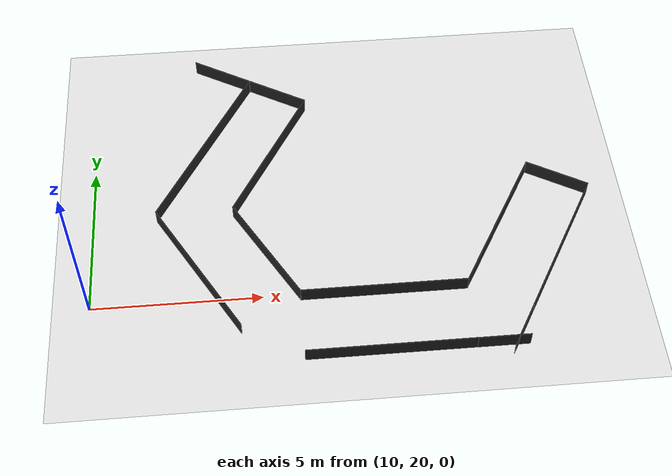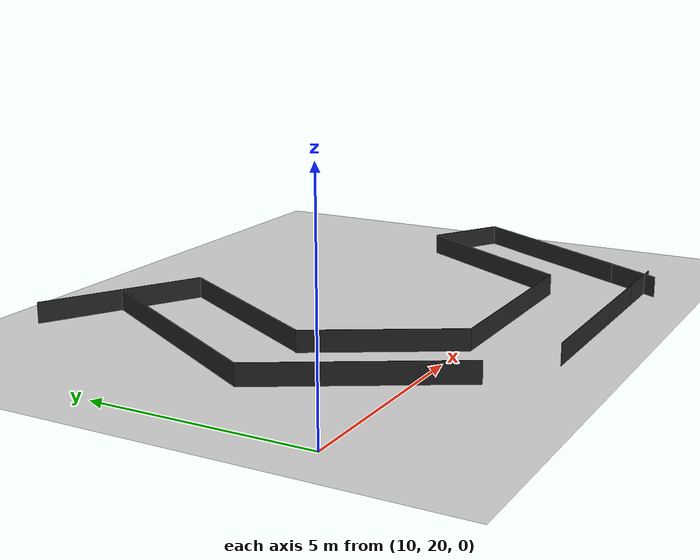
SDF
<sdf version="1.6">
 <world name="default">
  <model name="ground_plane">
   <static>1</static>
   <link name="link">
    <collision name="collision">
     <geometry><plane><normal>0 0 1</normal><size>100 100</size></plane></geometry>
     <surface><friction><ode><mu>100</mu><mu2>50</mu2></ode></friction></surface>
    </collision>
    <visual name="visual">
     <cast_shadows>0</cast_shadows>
     <geometry><plane><normal>0 0 1</normal><size>100 100</size></plane></geometry>
     <material>
      <script><uri>file://media/materials/scripts/gazebo.material</uri><name>Gazebo/White</name></script>
     </material>
    </visual>
   </link>
  </model>
  <model name="T_maze_0">
   <link name="link_clone_0_clone_clone_1">
    <inertial>
     <mass>1</mass>
     <inertia>
      <ixx>0.166667</ixx>
      <ixy>0</ixy>
      <ixz>0</ixz>
      <iyy>0.166667</iyy>
      <iyz>0</iyz>
      <izz>0.166667</izz>
     </inertia>
    </inertial>
    <pose>17.9599 5.5227 1e-06 5e-06 -0 -2.0944</pose>
    <visual name="visual_2">
     <geometry><box><size>0.015 4.8453 0.5</size></box></geometry>
     <material>
      <script><name>Gazebo/FlatBlack</name><uri>file://media/materials/scripts/gazebo.material</uri></script>
      <shader type="pixel"><normal_map>__default__</normal_map></shader>
      <ambient>0.1 0.1 0.1 1</ambient>
      <diffuse>0.1 0.1 0.1 1</diffuse>
      <specular>0.01 0.01 0.01 1</specular>
      <emissive>0 0 0 1</emissive>
     </material>
     <pose>2 0 0 0 -0 0</pose>
    </visual>
    <visual name="visual">
     <geometry><box><size>0.015 3.7053 0.5</size></box></geometry>
     <material>
      <script><name>Gazebo/FlatBlack</name><uri>file://media/materials/scripts/gazebo.material</uri></script>
      <shader type="pixel"><normal_map>__default__</normal_map></shader>
      <ambient>0.1 0.1 0.1 1</ambient>
      <diffuse>0.1 0.1 0.1 1</diffuse>
      <specular>0.01 0.01 0.01 1</specular>
      <emissive>0 0 0 1</emissive>
     </material>
     <pose>0 -0.57 0 0 -0 0</pose>
    </visual>
    <collision name="collision_1">
     <pose>2 0 0 0 -0 0</pose>
     <geometry><box><size>0.015 4.8453 0.5</size></box></geometry>
     <surface>
      <friction>
       <ode><mu>1</mu><mu2>1</mu2><fdir1>0 0 0</fdir1><slip1>0</slip1><slip2>0</slip2></ode>
       <torsional>
        <coefficient>1</coefficient>
        <patch_radius>0</patch_radius>
        <surface_radius>0</surface_radius>
        <use_patch_radius>1</use_patch_radius>
        <ode><slip>0</slip></ode>
       </torsional>
      </friction>
      <bounce><restitution_coefficient>0</restitution_coefficient><threshold>1e+06</threshold></bounce>
      <contact>
       <collide_without_contact>0</collide_without_contact>
       <collide_without_contact_bitmask>1</collide_without_contact_bitmask>
       <collide_bitmask>1</collide_bitmask>
       <ode>
        <soft_cfm>0</soft_cfm>
        <soft_erp>0.2</soft_erp>
        <kp>1e+13</kp>
        <kd>1</kd>
        <max_vel>0.01</max_vel>
        <min_depth>0</min_depth>
       </ode>
       <bullet>
        <split_impulse>1</split_impulse>
        <split_impulse_penetration_threshold>-0.01</split_impulse_penetration_threshold>
        <soft_cfm>0</soft_cfm>
        <soft_erp>0.2</soft_erp>
        <kp>1e+13</kp>
        <kd>1</kd>
       </bullet>
      </contact>
     </surface>
    </collision>
    <collision name="collision">
     <pose>0 -0.57 0 0 -0 0</pose>
     <geometry><box><size>0.015 3.7053 0.5</size></box></geometry>
     <surface>
      <friction>
       <ode><mu>1</mu><mu2>1</mu2><fdir1>0 0 0</fdir1><slip1>0</slip1><slip2>0</slip2></ode>
       <torsional>
        <coefficient>1</coefficient>
        <patch_radius>0</patch_radius>
        <surface_radius>0</surface_radius>
        <use_patch_radius>1</use_patch_radius>
        <ode><slip>0</slip></ode>
       </torsional>
      </friction>
      <bounce><restitution_coefficient>0</restitution_coefficient><threshold>1e+06</threshold></bounce>
      <contact>
       <collide_without_contact>0</collide_without_contact>
       <collide_without_contact_bitmask>1</collide_without_contact_bitmask>
       <collide_bitmask>1</collide_bitmask>
       <ode>
        <soft_cfm>0</soft_cfm>
        <soft_erp>0.2</soft_erp>
        <kp>1e+13</kp>
        <kd>1</kd>
        <max_vel>0.01</max_vel>
        <min_depth>0</min_depth>
       </ode>
       <bullet>
        <split_impulse>1</split_impulse>
        <split_impulse_penetration_threshold>-0.01</split_impulse_penetration_threshold>
        <soft_cfm>0</soft_cfm>
        <soft_erp>0.2</soft_erp>
        <kp>1e+13</kp>
        <kd>1</kd>
       </bullet>
      </contact>
     </surface>
    </collision>
   </link>
   <link name="link_clone_1">
    <inertial>
     <mass>1</mass>
     <inertia>
      <ixx>0.166667</ixx>
      <ixy>0</ixy>
      <ixz>0</ixz>
      <iyy>0.166667</iyy>
      <iyz>0</iyz>
      <izz>0.166667</izz>
     </inertia>
    </inertial>
    <pose>13.8686 9.15 0 0 -0 0</pose>
    <visual name="visual_2">
     <geometry><box><size>0.015 4.8453 0.5</size></box></geometry>
     <material>
      <script><name>Gazebo/FlatBlack</name><uri>file://media/materials/scripts/gazebo.material</uri></script>
      <shader type="pixel"><normal_map>__default__</normal_map></shader>
      <ambient>0.1 0.1 0.1 1</ambient>
      <diffuse>0.1 0.1 0.1 1</diffuse>
      <specular>0.01 0.01 0.01 1</specular>
      <emissive>0 0 0 1</emissive>
     </material>
     <pose>2 0 0 0 -0 0</pose>
    </visual>
    <visual name="visual">
     <geometry><box><size>0.015 4.8453 0.5</size></box></geometry>
     <material>
      <script><name>Gazebo/FlatBlack</name><uri>file://media/materials/scripts/gazebo.material</uri></script>
      <shader type="pixel"><normal_map>__default__</normal_map></shader>
      <ambient>0.1 0.1 0.1 1</ambient>
      <diffuse>0.1 0.1 0.1 1</diffuse>
      <specular>0.01 0.01 0.01 1</specular>
      <emissive>0 0 0 1</emissive>
     </material>
    </visual>
    <collision name="collision_1">
     <pose>2 0 0 0 -0 0</pose>
     <geometry><box><size>0.015 4.8453 0.5</size></box></geometry>
     <surface>
      <friction>
       <ode><mu>1</mu><mu2>1</mu2><fdir1>0 0 0</fdir1><slip1>0</slip1><slip2>0</slip2></ode>
       <torsional>
        <coefficient>1</coefficient>
        <patch_radius>0</patch_radius>
        <surface_radius>0</surface_radius>
        <use_patch_radius>1</use_patch_radius>
        <ode><slip>0</slip></ode>
       </torsional>
      </friction>
      <bounce><restitution_coefficient>0</restitution_coefficient><threshold>1e+06</threshold></bounce>
      <contact>
       <collide_without_contact>0</collide_without_contact>
       <collide_without_contact_bitmask>1</collide_without_contact_bitmask>
       <collide_bitmask>1</collide_bitmask>
       <ode>
        <soft_cfm>0</soft_cfm>
        <soft_erp>0.2</soft_erp>
        <kp>1e+13</kp>
        <kd>1</kd>
        <max_vel>0.01</max_vel>
        <min_depth>0</min_depth>
       </ode>
       <bullet>
        <split_impulse>1</split_impulse>
        <split_impulse_penetration_threshold>-0.01</split_impulse_penetration_threshold>
        <soft_cfm>0</soft_cfm>
        <soft_erp>0.2</soft_erp>
        <kp>1e+13</kp>
        <kd>1</kd>
       </bullet>
      </contact>
     </surface>
    </collision>
    <collision name="collision">
     <geometry><box><size>0.015 4.8453 0.5</size></box></geometry>
     <surface>
      <friction>
       <ode><mu>1</mu><mu2>1</mu2><fdir1>0 0 0</fdir1><slip1>0</slip1><slip2>0</slip2></ode>
       <torsional>
        <coefficient>1</coefficient>
        <patch_radius>0</patch_radius>
        <surface_radius>0</surface_radius>
        <use_patch_radius>1</use_patch_radius>
        <ode><slip>0</slip></ode>
       </torsional>
      </friction>
      <bounce><restitution_coefficient>0</restitution_coefficient><threshold>1e+06</threshold></bounce>
      <contact>
       <collide_without_contact>0</collide_without_contact>
       <collide_without_contact_bitmask>1</collide_without_contact_bitmask>
       <collide_bitmask>1</collide_bitmask>
       <ode>
        <soft_cfm>0</soft_cfm>
        <soft_erp>0.2</soft_erp>
        <kp>1e+13</kp>
        <kd>1</kd>
        <max_vel>0.01</max_vel>
        <min_depth>0</min_depth>
       </ode>
       <bullet>
        <split_impulse>1</split_impulse>
        <split_impulse_penetration_threshold>-0.01</split_impulse_penetration_threshold>
        <soft_cfm>0</soft_cfm>
        <soft_erp>0.2</soft_erp>
        <kp>1e+13</kp>
        <kd>1</kd>
       </bullet>
      </contact>
     </surface>
    </collision>
   </link>
   <link name="link_clone_clone_1_clone">
    <inertial>
     <mass>1</mass>
     <inertia>
      <ixx>0.166667</ixx>
      <ixy>0</ixy>
      <ixz>0</ixz>
      <iyy>0.166667</iyy>
      <iyz>0</iyz>
      <izz>0.166667</izz>
     </inertia>
    </inertial>
    <pose>17.9632 12.7767 0 5e-06 -0 2.0944</pose>
    <visual name="visual">
     <geometry><box><size>0.015 4.8453 0.5</size></box></geometry>
     <material>
      <script><name>Gazebo/FlatBlack</name><uri>file://media/materials/scripts/gazebo.material</uri></script>
      <shader type="pixel"><normal_map>__default__</normal_map></shader>
      <ambient>0.1 0.1 0.1 1</ambient>
      <diffuse>0.1 0.1 0.1 1</diffuse>
      <specular>0.01 0.01 0.01 1</specular>
      <emissive>0 0 0 1</emissive>
     </material>
    </visual>
    <visual name="visual_2">
     <geometry><box><size>0.015 4.8453 0.5</size></box></geometry>
     <material>
      <script><name>Gazebo/FlatBlack</name><uri>file://media/materials/scripts/gazebo.material</uri></script>
      <shader type="pixel"><normal_map>__default__</normal_map></shader>
      <ambient>0.1 0.1 0.1 1</ambient>
      <diffuse>0.1 0.1 0.1 1</diffuse>
      <specular>0.01 0.01 0.01 1</specular>
      <emissive>0 0 0 1</emissive>
     </material>
     <pose>2 0 0 0 -0 0</pose>
    </visual>
    <collision name="collision">
     <geometry><box><size>0.015 4.8453 0.5</size></box></geometry>
     <surface>
      <friction>
       <ode><mu>1</mu><mu2>1</mu2><fdir1>0 0 0</fdir1><slip1>0</slip1><slip2>0</slip2></ode>
       <torsional>
        <coefficient>1</coefficient>
        <patch_radius>0</patch_radius>
        <surface_radius>0</surface_radius>
        <use_patch_radius>1</use_patch_radius>
        <ode><slip>0</slip></ode>
       </torsional>
      </friction>
      <bounce><restitution_coefficient>0</restitution_coefficient><threshold>1e+06</threshold></bounce>
      <contact>
       <collide_without_contact>0</collide_without_contact>
       <collide_without_contact_bitmask>1</collide_without_contact_bitmask>
       <collide_bitmask>1</collide_bitmask>
       <ode>
        <soft_cfm>0</soft_cfm>
        <soft_erp>0.2</soft_erp>
        <kp>1e+13</kp>
        <kd>1</kd>
        <max_vel>0.01</max_vel>
        <min_depth>0</min_depth>
       </ode>
       <bullet>
        <split_impulse>1</split_impulse>
        <split_impulse_penetration_threshold>-0.01</split_impulse_penetration_threshold>
        <soft_cfm>0</soft_cfm>
        <soft_erp>0.2</soft_erp>
        <kp>1e+13</kp>
        <kd>1</kd>
       </bullet>
      </contact>
     </surface>
    </collision>
    <collision name="collision_1">
     <pose>2 0 0 0 -0 0</pose>
     <geometry><box><size>0.015 4.8453 0.5</size></box></geometry>
     <surface>
      <friction>
       <ode><mu>1</mu><mu2>1</mu2><fdir1>0 0 0</fdir1><slip1>0</slip1><slip2>0</slip2></ode>
       <torsional>
        <coefficient>1</coefficient>
        <patch_radius>0</patch_radius>
        <surface_radius>0</surface_radius>
        <use_patch_radius>1</use_patch_radius>
        <ode><slip>0</slip></ode>
       </torsional>
      </friction>
      <bounce><restitution_coefficient>0</restitution_coefficient><threshold>1e+06</threshold></bounce>
      <contact>
       <collide_without_contact>0</collide_without_contact>
       <collide_without_contact_bitmask>1</collide_without_contact_bitmask>
       <collide_bitmask>1</collide_bitmask>
       <ode>
        <soft_cfm>0</soft_cfm>
        <soft_erp>0.2</soft_erp>
        <kp>1e+13</kp>
        <kd>1</kd>
        <max_vel>0.01</max_vel>
        <min_depth>0</min_depth>
       </ode>
       <bullet>
        <split_impulse>1</split_impulse>
        <split_impulse_penetration_threshold>-0.01</split_impulse_penetration_threshold>
        <soft_cfm>0</soft_cfm>
        <soft_erp>0.2</soft_erp>
        <kp>1e+13</kp>
        <kd>1</kd>
       </bullet>
      </contact>
     </surface>
    </collision>
   </link>
   <link name="link_clone_clone_1_clone_clone_0">
    <inertial>
     <mass>1</mass>
     <inertia>
      <ixx>0.166667</ixx>
      <ixy>0</ixy>
      <ixz>0</ixz>
      <iyy>0.166667</iyy>
      <iyz>0</iyz>
      <izz>0.166667</izz>
     </inertia>
    </inertial>
    <pose>22.1519 4.37214 -0 5e-06 -0 2.0944</pose>
    <visual name="visual">
     <geometry><box><size>0.015 6 0.5</size></box></geometry>
     <material>
      <script><name>Gazebo/FlatBlack</name><uri>file://media/materials/scripts/gazebo.material</uri></script>
      <shader type="pixel"><normal_map>__default__</normal_map></shader>
      <ambient>0.1 0.1 0.1 1</ambient>
      <diffuse>0.1 0.1 0.1 1</diffuse>
      <specular>0.01 0.01 0.01 1</specular>
      <emissive>0 0 0 1</emissive>
     </material>
     <pose>0 0.58 0 0 -0 0</pose>
    </visual>
    <visual name="visual_2">
     <geometry><box><size>0.015 4.8453 0.5</size></box></geometry>
     <material>
      <script><name>Gazebo/FlatBlack</name><uri>file://media/materials/scripts/gazebo.material</uri></script>
      <shader type="pixel"><normal_map>__default__</normal_map></shader>
      <ambient>0.1 0.1 0.1 1</ambient>
      <diffuse>0.1 0.1 0.1 1</diffuse>
      <specular>0.01 0.01 0.01 1</specular>
      <emissive>0 0 0 1</emissive>
     </material>
     <pose>2 0 0 0 -0 0</pose>
    </visual>
    <collision name="collision">
     <pose>0 0.58 0 0 -0 0</pose>
     <geometry><box><size>0.015 6 0.5</size></box></geometry>
     <surface>
      <friction>
       <ode><mu>1</mu><mu2>1</mu2><fdir1>0 0 0</fdir1><slip1>0</slip1><slip2>0</slip2></ode>
       <torsional>
        <coefficient>1</coefficient>
        <patch_radius>0</patch_radius>
        <surface_radius>0</surface_radius>
        <use_patch_radius>1</use_patch_radius>
        <ode><slip>0</slip></ode>
       </torsional>
      </friction>
      <bounce><restitution_coefficient>0</restitution_coefficient><threshold>1e+06</threshold></bounce>
      <contact>
       <collide_without_contact>0</collide_without_contact>
       <collide_without_contact_bitmask>1</collide_without_contact_bitmask>
       <collide_bitmask>1</collide_bitmask>
       <ode>
        <soft_cfm>0</soft_cfm>
        <soft_erp>0.2</soft_erp>
        <kp>1e+13</kp>
        <kd>1</kd>
        <max_vel>0.01</max_vel>
        <min_depth>0</min_depth>
       </ode>
       <bullet>
        <split_impulse>1</split_impulse>
        <split_impulse_penetration_threshold>-0.01</split_impulse_penetration_threshold>
        <soft_cfm>0</soft_cfm>
        <soft_erp>0.2</soft_erp>
        <kp>1e+13</kp>
        <kd>1</kd>
       </bullet>
      </contact>
     </surface>
    </collision>
    <collision name="collision_1">
     <pose>2 0 0 0 -0 0</pose>
     <geometry><box><size>0.015 4.8453 0.5</size></box></geometry>
     <surface>
      <friction>
       <ode><mu>1</mu><mu2>1</mu2><fdir1>0 0 0</fdir1><slip1>0</slip1><slip2>0</slip2></ode>
       <torsional>
        <coefficient>1</coefficient>
        <patch_radius>0</patch_radius>
        <surface_radius>0</surface_radius>
        <use_patch_radius>1</use_patch_radius>
        <ode><slip>0</slip></ode>
       </torsional>
      </friction>
      <bounce><restitution_coefficient>0</restitution_coefficient><threshold>1e+06</threshold></bounce>
      <contact>
       <collide_without_contact>0</collide_without_contact>
       <collide_without_contact_bitmask>1</collide_without_contact_bitmask>
       <collide_bitmask>1</collide_bitmask>
       <ode>
        <soft_cfm>0</soft_cfm>
        <soft_erp>0.2</soft_erp>
        <kp>1e+13</kp>
        <kd>1</kd>
        <max_vel>0.01</max_vel>
        <min_depth>0</min_depth>
       </ode>
       <bullet>
        <split_impulse>1</split_impulse>
        <split_impulse_penetration_threshold>-0.01</split_impulse_penetration_threshold>
        <soft_cfm>0</soft_cfm>
        <soft_erp>0.2</soft_erp>
        <kp>1e+13</kp>
        <kd>1</kd>
       </bullet>
      </contact>
     </surface>
    </collision>
   </link>
   <link name="link_clone_clone_clone_clone_0_clone_0">
    <inertial>
     <mass>1</mass>
     <inertia>
      <ixx>0.166667</ixx>
      <ixy>0</ixy>
      <ixz>0</ixz>
      <iyy>0.166667</iyy>
      <iyz>0</iyz>
      <izz>0.166667</izz>
     </inertia>
    </inertial>
    <pose>13.8673 12.3104 -9e-06 5e-06 -0 0</pose>
    <visual name="visual">
     <geometry><box><size>0.015 1.5 0.5</size></box></geometry>
     <material>
      <script><name>Gazebo/FlatBlack</name><uri>file://media/materials/scripts/gazebo.material</uri></script>
      <shader type="pixel"><normal_map>__default__</normal_map></shader>
      <ambient>0.1 0.1 0.1 1</ambient>
      <diffuse>0.1 0.1 0.1 1</diffuse>
      <specular>0.01 0.01 0.01 1</specular>
      <emissive>0 0 0 1</emissive>
     </material>
    </visual>
    <visual name="visual_2">
     <geometry><box><size>0.015 1.5 0.5</size></box></geometry>
     <material>
      <script><name>Gazebo/FlatBlack</name><uri>file://media/materials/scripts/gazebo.material</uri></script>
      <shader type="pixel"><normal_map>__default__</normal_map></shader>
      <ambient>0.1 0.1 0.1 1</ambient>
      <diffuse>0.1 0.1 0.1 1</diffuse>
      <specular>0.01 0.01 0.01 1</specular>
      <emissive>0 0 0 1</emissive>
     </material>
     <pose>0.3525 0.615 0 0 -0 2.0944</pose>
    </visual>
    <collision name="collision_2">
     <pose>0.3525 0.615 0 0 -0 2.0944</pose>
     <geometry><box><size>0.015 1.5 0.5</size></box></geometry>
     <surface>
      <friction>
       <ode><mu>1</mu><mu2>1</mu2><fdir1>0 0 0</fdir1><slip1>0</slip1><slip2>0</slip2></ode>
       <torsional>
        <coefficient>1</coefficient>
        <patch_radius>0</patch_radius>
        <surface_radius>0</surface_radius>
        <use_patch_radius>1</use_patch_radius>
        <ode><slip>0</slip></ode>
       </torsional>
      </friction>
      <bounce><restitution_coefficient>0</restitution_coefficient><threshold>1e+06</threshold></bounce>
      <contact>
       <collide_without_contact>0</collide_without_contact>
       <collide_without_contact_bitmask>1</collide_without_contact_bitmask>
       <collide_bitmask>1</collide_bitmask>
       <ode>
        <soft_cfm>0</soft_cfm>
        <soft_erp>0.2</soft_erp>
        <kp>1e+13</kp>
        <kd>1</kd>
        <max_vel>0.01</max_vel>
        <min_depth>0</min_depth>
       </ode>
       <bullet>
        <split_impulse>1</split_impulse>
        <split_impulse_penetration_threshold>-0.01</split_impulse_penetration_threshold>
        <soft_cfm>0</soft_cfm>
        <soft_erp>0.2</soft_erp>
        <kp>1e+13</kp>
        <kd>1</kd>
       </bullet>
      </contact>
     </surface>
    </collision>
    <collision name="collision">
     <geometry><box><size>0.015 1.5 0.5</size></box></geometry>
     <surface>
      <friction>
       <ode><mu>1</mu><mu2>1</mu2><fdir1>0 0 0</fdir1><slip1>0</slip1><slip2>0</slip2></ode>
       <torsional>
        <coefficient>1</coefficient>
        <patch_radius>0</patch_radius>
        <surface_radius>0</surface_radius>
        <use_patch_radius>1</use_patch_radius>
        <ode><slip>0</slip></ode>
       </torsional>
      </friction>
      <bounce><restitution_coefficient>0</restitution_coefficient><threshold>1e+06</threshold></bounce>
      <contact>
       <collide_without_contact>0</collide_without_contact>
       <collide_without_contact_bitmask>1</collide_without_contact_bitmask>
       <collide_bitmask>1</collide_bitmask>
       <ode>
        <soft_cfm>0</soft_cfm>
        <soft_erp>0.2</soft_erp>
        <kp>1e+13</kp>
        <kd>1</kd>
        <max_vel>0.01</max_vel>
        <min_depth>0</min_depth>
       </ode>
       <bullet>
        <split_impulse>1</split_impulse>
        <split_impulse_penetration_threshold>-0.01</split_impulse_penetration_threshold>
        <soft_cfm>0</soft_cfm>
        <soft_erp>0.2</soft_erp>
        <kp>1e+13</kp>
        <kd>1</kd>
       </bullet>
      </contact>
     </surface>
    </collision>
   </link>
   <link name="link_clone_clone_clone_clone_clone_0">
    <inertial>
     <mass>1</mass>
     <inertia>
      <ixx>0.166667</ixx>
      <ixy>0</ixy>
      <ixz>0</ixz>
      <iyy>0.166667</iyy>
      <iyz>0</iyz>
      <izz>0.166667</izz>
     </inertia>
    </inertial>
    <pose>19.5548 14.8497 -1e-06 4e-06 -2e-06 0.5236</pose>
    <visual name="visual">
     <geometry><box><size>0.015 2 0.5</size></box></geometry>
     <material>
      <script><name>Gazebo/FlatBlack</name><uri>file://media/materials/scripts/gazebo.material</uri></script>
      <shader type="pixel"><normal_map>__default__</normal_map></shader>
      <ambient>0.1 0.1 0.1 1</ambient>
      <diffuse>0.1 0.1 0.1 1</diffuse>
      <specular>0.01 0.01 0.01 1</specular>
      <emissive>0 0 0 1</emissive>
     </material>
    </visual>
    <collision name="collision">
     <geometry><box><size>0.015 2 0.5</size></box></geometry>
     <surface>
      <friction>
       <ode><mu>1</mu><mu2>1</mu2><fdir1>0 0 0</fdir1><slip1>0</slip1><slip2>0</slip2></ode>
       <torsional>
        <coefficient>1</coefficient>
        <patch_radius>0</patch_radius>
        <surface_radius>0</surface_radius>
        <use_patch_radius>1</use_patch_radius>
        <ode><slip>0</slip></ode>
       </torsional>
      </friction>
      <bounce><restitution_coefficient>0</restitution_coefficient><threshold>1e+06</threshold></bounce>
      <contact>
       <collide_without_contact>0</collide_without_contact>
       <collide_without_contact_bitmask>1</collide_without_contact_bitmask>
       <collide_bitmask>1</collide_bitmask>
       <ode>
        <soft_cfm>0</soft_cfm>
        <soft_erp>0.2</soft_erp>
        <kp>1e+13</kp>
        <kd>1</kd>
        <max_vel>0.01</max_vel>
        <min_depth>0</min_depth>
       </ode>
       <bullet>
        <split_impulse>1</split_impulse>
        <split_impulse_penetration_threshold>-0.01</split_impulse_penetration_threshold>
        <soft_cfm>0</soft_cfm>
        <soft_erp>0.2</soft_erp>
        <kp>1e+13</kp>
        <kd>1</kd>
       </bullet>
      </contact>
     </surface>
    </collision>
   </link>
   <link name="link_clone_clone_clone_clone_clone_0_clone_0">
    <inertial>
     <mass>1</mass>
     <inertia>
      <ixx>0.166667</ixx>
      <ixy>0</ixy>
      <ixz>0</ixz>
      <iyy>0.166667</iyy>
      <iyz>0</iyz>
      <izz>0.166667</izz>
     </inertia>
    </inertial>
    <pose>23.7427 6.45343 -1e-06 4e-06 -2e-06 0.5236</pose>
    <visual name="visual">
     <geometry><box><size>0.015 2 0.5</size></box></geometry>
     <material>
      <script><name>Gazebo/FlatBlack</name><uri>file://media/materials/scripts/gazebo.material</uri></script>
      <shader type="pixel"><normal_map>__default__</normal_map></shader>
      <ambient>0.1 0.1 0.1 1</ambient>
      <diffuse>0.1 0.1 0.1 1</diffuse>
      <specular>0.01 0.01 0.01 1</specular>
      <emissive>0 0 0 1</emissive>
     </material>
    </visual>
    <collision name="collision">
     <geometry><box><size>0.015 2 0.5</size></box></geometry>
     <surface>
      <friction>
       <ode><mu>1</mu><mu2>1</mu2><fdir1>0 0 0</fdir1><slip1>0</slip1><slip2>0</slip2></ode>
       <torsional>
        <coefficient>1</coefficient>
        <patch_radius>0</patch_radius>
        <surface_radius>0</surface_radius>
        <use_patch_radius>1</use_patch_radius>
        <ode><slip>0</slip></ode>
       </torsional>
      </friction>
      <bounce><restitution_coefficient>0</restitution_coefficient><threshold>1e+06</threshold></bounce>
      <contact>
       <collide_without_contact>0</collide_without_contact>
       <collide_without_contact_bitmask>1</collide_without_contact_bitmask>
       <collide_bitmask>1</collide_bitmask>
       <ode>
        <soft_cfm>0</soft_cfm>
        <soft_erp>0.2</soft_erp>
        <kp>1e+13</kp>
        <kd>1</kd>
        <max_vel>0.01</max_vel>
        <min_depth>0</min_depth>
       </ode>
       <bullet>
        <split_impulse>1</split_impulse>
        <split_impulse_penetration_threshold>-0.01</split_impulse_penetration_threshold>
        <soft_cfm>0</soft_cfm>
        <soft_erp>0.2</soft_erp>
        <kp>1e+13</kp>
        <kd>1</kd>
       </bullet>
      </contact>
     </surface>
    </collision>
   </link>
   <link name="link_clone_clone_clone_clone_clone_0_clone_1">
    <inertial>
     <mass>1</mass>
     <inertia>
      <ixx>0.166667</ixx>
      <ixy>0</ixy>
      <ixz>0</ixz>
      <iyy>0.166667</iyy>
      <iyz>0</iyz>
      <izz>0.166667</izz>
     </inertia>
    </inertial>
    <pose>24.7486 4.70763 -1e-06 4e-06 -2e-06 0.5236</pose>
    <visual name="visual">
     <geometry><box><size>0.015 2 0.5</size></box></geometry>
     <material>
      <script><name>Gazebo/FlatBlack</name><uri>file://media/materials/scripts/gazebo.material</uri></script>
      <shader type="pixel"><normal_map>__default__</normal_map></shader>
      <ambient>0.1 0.1 0.1 1</ambient>
      <diffuse>0.1 0.1 0.1 1</diffuse>
      <specular>0.01 0.01 0.01 1</specular>
      <emissive>0 0 0 1</emissive>
     </material>
    </visual>
    <collision name="collision">
     <geometry><box><size>0.015 2 0.5</size></box></geometry>
     <surface>
      <friction>
       <ode><mu>1</mu><mu2>1</mu2><fdir1>0 0 0</fdir1><slip1>0</slip1><slip2>0</slip2></ode>
       <torsional>
        <coefficient>1</coefficient>
        <patch_radius>0</patch_radius>
        <surface_radius>0</surface_radius>
        <use_patch_radius>1</use_patch_radius>
        <ode><slip>0</slip></ode>
       </torsional>
      </friction>
      <bounce><restitution_coefficient>0</restitution_coefficient><threshold>1e+06</threshold></bounce>
      <contact>
       <collide_without_contact>0</collide_without_contact>
       <collide_without_contact_bitmask>1</collide_without_contact_bitmask>
       <collide_bitmask>1</collide_bitmask>
       <ode>
        <soft_cfm>0</soft_cfm>
        <soft_erp>0.2</soft_erp>
        <kp>1e+13</kp>
        <kd>1</kd>
        <max_vel>0.01</max_vel>
        <min_depth>0</min_depth>
       </ode>
       <bullet>
        <split_impulse>1</split_impulse>
        <split_impulse_penetration_threshold>-0.01</split_impulse_penetration_threshold>
        <soft_cfm>0</soft_cfm>
        <soft_erp>0.2</soft_erp>
        <kp>1e+13</kp>
        <kd>1</kd>
       </bullet>
      </contact>
     </surface>
    </collision>
   </link>
   <static>1</static>
   <pose>9.33217 3.95788 0.249997 -3.14159 -3e-06 1.57079</pose>
  </model>
 </world>
</sdf>
